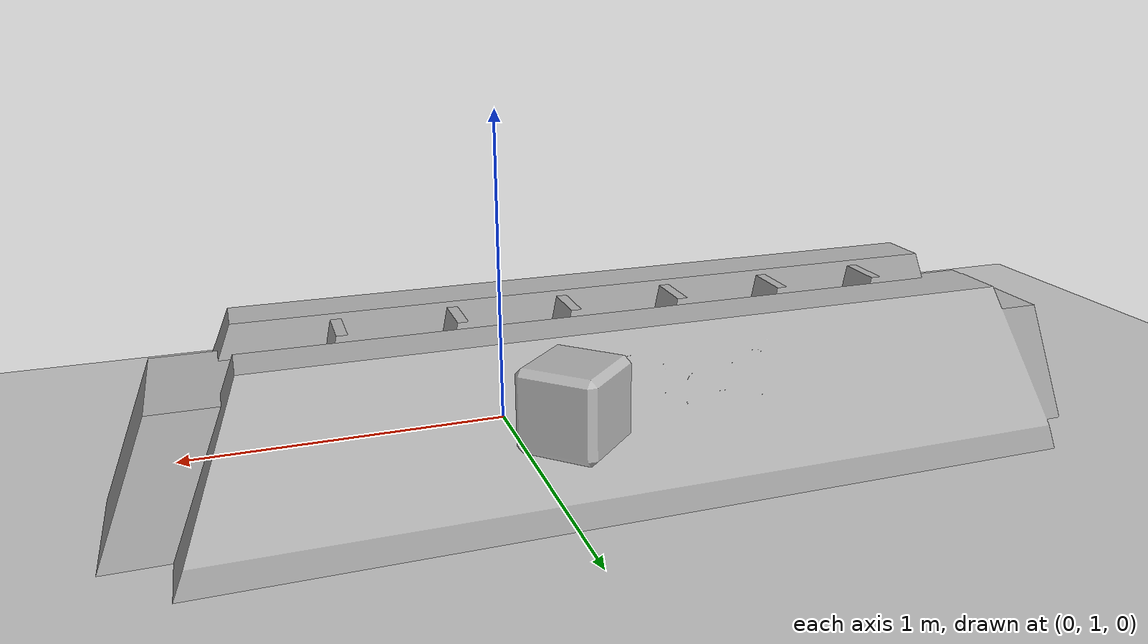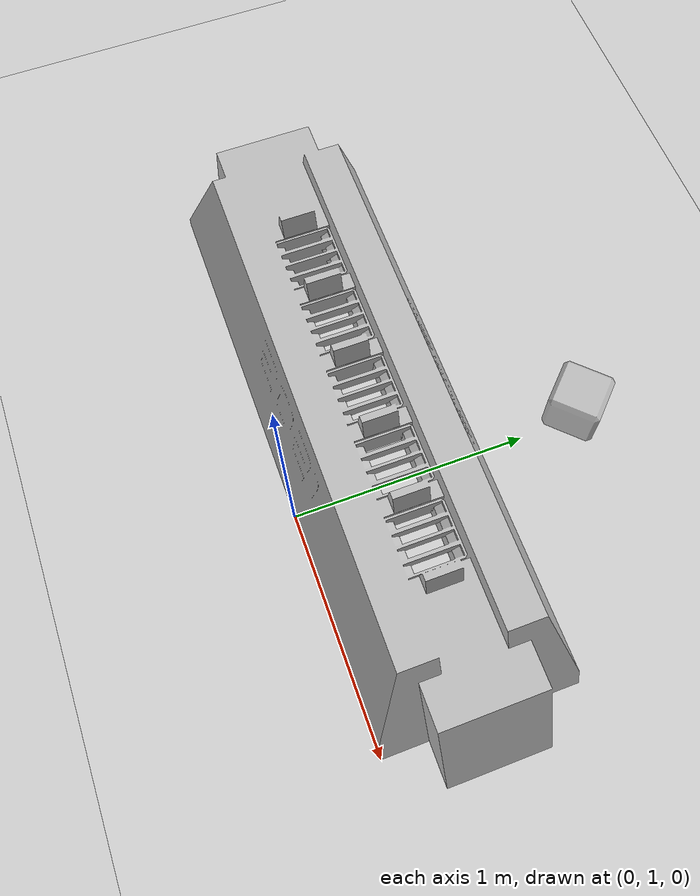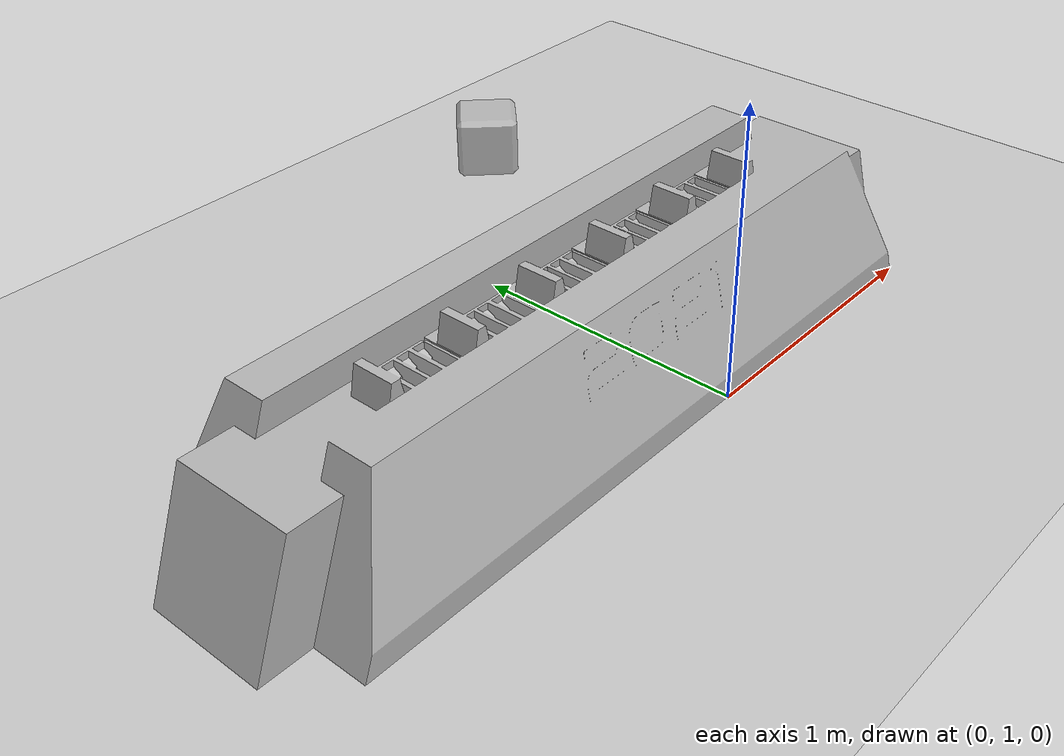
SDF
<?xml version="1.0" ?>

<sdf version="1.5">
    <world name="default">
        <!-- Target real time factor is the product of max_step_size and real_time_update_rate -->
        <!-- Negative real_time_update_rate means that Gazebo will run as fast as possible -->
        <physics type="ode">
            <type>world</type>
            <max_step_size>0.001</max_step_size>
            <real_time_update_rate>1000</real_time_update_rate>
        </physics>

        <include>
            <uri>model://ground_plane</uri>
        </include>

        <light name='sun' type='directional'>
            <cast_shadows>1</cast_shadows>
            <pose>0 0 10 0 -0 0</pose>
            <diffuse>0.8 0.8 0.8 1</diffuse>
            <specular>0.2 0.2 0.2 1</specular>
            <attenuation>
                <range>1000</range>
                <constant>0.9</constant>
                <linear>0.01</linear>
                <quadratic>0.001</quadratic>
            </attenuation>
            <direction>-0.5 0.1 -0.9</direction>
        </light>

        <model name='stone'>
            <pose>0.11 2.1145 0.5 0 0 0.7853982</pose>
            <link name='stone_link'>
                <inertial>
                    <mass>0.590</mass>
                    <inertia>
                        <ixx>0.004</ixx>
                        <ixy>0.0</ixy>
                        <ixz>0.0</ixz>
                        <iyy>0.004</iyy>
                        <iyz>0.0</iyz>
                        <izz>0.004</izz>
                    </inertia>
                </inertial>
                <visual name='visual'>
                    <geometry>
                        <mesh>
                            <uri>model://rm_gazebo/worlds/stone/stone.dae</uri>
                            <scale>1 1 1</scale>
                        </mesh>
                    </geometry>
                    <material>
                        <lighting>0</lighting>
                    </material>

                </visual>
                <collision name='collision'>
                    <geometry>
                        <mesh>
                            <uri>model://rm_gazebo/worlds/stone/stone.dae</uri>
                            <scale>1 1 1</scale>
                        </mesh>
                    </geometry>
                    <max_contacts>10</max_contacts>
                    <surface>
                        <bounce/>
                        <friction>
                            <ode/>
                        </friction>
                        <contact>
                            <ode/>
                        </contact>
                    </surface>
                </collision>
                <velocity_decay>
                    <linear>0</linear>
                    <angular>0</angular>
                </velocity_decay>
                <self_collide>0</self_collide>
                <kinematic>0</kinematic>
                <gravity>1</gravity>
            </link>
        </model>

        <model name='big_resource'>
            <static>1</static>
            <static>1</static>
            <link name='big_resource_link'>
                <pose>1 1 0 0 0 0</pose>
                <visual name='visual'>
                    <geometry>
                        <mesh>
                            <uri>model://rm_gazebo/worlds/place/big_resource.stl</uri>
                            <scale>0.001 0.001 0.001</scale>
                        </mesh>
                    </geometry>
                </visual>
                <collision name='collision'>
                    <geometry>
                        <mesh>
                            <uri>model://rm_gazebo/worlds/place/big_resource.stl</uri>
                            <scale>0.001 0.001 0.001</scale>
                        </mesh>
                    </geometry>
                    <max_contacts>10</max_contacts>
                    <surface>
                        <bounce/>
                        <friction>
                            <ode/>
                        </friction>
                        <contact>
                            <ode/>
                        </contact>
                    </surface>
                </collision>
                <velocity_decay>
                    <linear>0</linear>
                    <angular>0</angular>
                </velocity_decay>
                <self_collide>0</self_collide>
                <kinematic>0</kinematic>
                <gravity>1</gravity>
            </link>
            <static>1</static>
        </model>
    </world>
</sdf>
